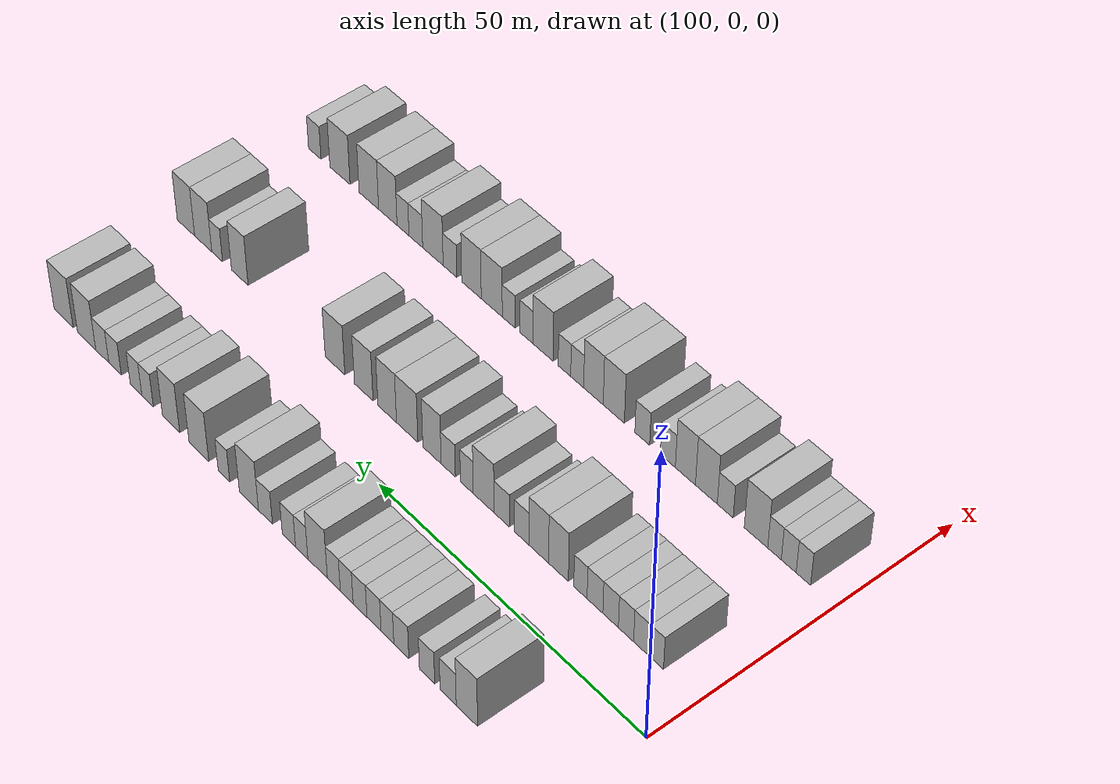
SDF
<sdf version="1.6">
 <world name="default">
  <model name="building_663">
   <static>1</static>
   <pose>91.0000 15.6715 0 0.000000 0.000000 0.000000</pose>
   <link name="link">
    <pose>0 0 4.50 0 0 0</pose>
    <collision name="collision"><geometry><box><size>10.0000 3.9258 9.0000</size></box></geometry></collision>
    <visual name="visual">
     <cast_shadows>0</cast_shadows>
     <geometry><box><size>10.0000 3.9258 9.0000</size></box></geometry>
     <material>
      <script>
       <uri>model://HANNAS_wall/materials/scripts</uri>
       <uri>model://HANNAS_wall/materials/textures</uri>
       <name>vrc/HANNAS_wall</name>
      </script>
     </material>
    </visual>
   </link>
  </model>
  <model name="building_664">
   <static>1</static>
   <pose>91.0000 19.1296 0 0.000000 0.000000 0.000000</pose>
   <link name="link">
    <pose>0 0 3.00 0 0 0</pose>
    <collision name="collision"><geometry><box><size>10.0000 2.9904 6.0000</size></box></geometry></collision>
    <visual name="visual">
     <cast_shadows>0</cast_shadows>
     <geometry><box><size>10.0000 2.9904 6.0000</size></box></geometry>
     <material>
      <script>
       <uri>model://HANNAS_wall/materials/scripts</uri>
       <uri>model://HANNAS_wall/materials/textures</uri>
       <name>vrc/HANNAS_wall</name>
      </script>
     </material>
    </visual>
   </link>
  </model>
  <model name="building_665">
   <static>1</static>
   <pose>91.0000 23.0635 0 0.000000 0.000000 0.000000</pose>
   <link name="link">
    <pose>0 0 3.00 0 0 0</pose>
    <collision name="collision"><geometry><box><size>10.0000 2.8774 6.0000</size></box></geometry></collision>
    <visual name="visual">
     <cast_shadows>0</cast_shadows>
     <geometry><box><size>10.0000 2.8774 6.0000</size></box></geometry>
     <material>
      <script>
       <uri>model://HANNAS_wall/materials/scripts</uri>
       <uri>model://HANNAS_wall/materials/textures</uri>
       <name>vrc/HANNAS_wall</name>
      </script>
     </material>
    </visual>
   </link>
  </model>
  <model name="building_666">
   <static>1</static>
   <pose>91.0000 27.9281 0 0.000000 0.000000 0.000000</pose>
   <link name="link">
    <pose>0 0 3.00 0 0 0</pose>
    <collision name="collision"><geometry><box><size>10.0000 2.8519 6.0000</size></box></geometry></collision>
    <visual name="visual">
     <cast_shadows>0</cast_shadows>
     <geometry><box><size>10.0000 2.8519 6.0000</size></box></geometry>
     <material>
      <script>
       <uri>model://HANNAS_wall/materials/scripts</uri>
       <uri>model://HANNAS_wall/materials/textures</uri>
       <name>vrc/HANNAS_wall</name>
      </script>
     </material>
    </visual>
   </link>
  </model>
  <model name="building_667">
   <static>1</static>
   <pose>91.0000 30.5806 0 0.000000 0.000000 0.000000</pose>
   <link name="link">
    <pose>0 0 3.00 0 0 0</pose>
    <collision name="collision"><geometry><box><size>10.0000 2.4531 6.0000</size></box></geometry></collision>
    <visual name="visual">
     <cast_shadows>0</cast_shadows>
     <geometry><box><size>10.0000 2.4531 6.0000</size></box></geometry>
     <material>
      <script>
       <uri>model://HANNAS_wall/materials/scripts</uri>
       <uri>model://HANNAS_wall/materials/textures</uri>
       <name>vrc/HANNAS_wall</name>
      </script>
     </material>
    </visual>
   </link>
  </model>
  <model name="building_668">
   <static>1</static>
   <pose>91.0000 33.1649 0 0.000000 0.000000 0.000000</pose>
   <link name="link">
    <pose>0 0 3.00 0 0 0</pose>
    <collision name="collision"><geometry><box><size>10.0000 2.7155 6.0000</size></box></geometry></collision>
    <visual name="visual">
     <cast_shadows>0</cast_shadows>
     <geometry><box><size>10.0000 2.7155 6.0000</size></box></geometry>
     <material>
      <script>
       <uri>model://HANNAS_wall/materials/scripts</uri>
       <uri>model://HANNAS_wall/materials/textures</uri>
       <name>vrc/HANNAS_wall</name>
      </script>
     </material>
    </visual>
   </link>
  </model>
  <model name="building_669">
   <static>1</static>
   <pose>91.0000 35.8710 0 0.000000 0.000000 0.000000</pose>
   <link name="link">
    <pose>0 0 3.00 0 0 0</pose>
    <collision name="collision"><geometry><box><size>10.0000 2.6967 6.0000</size></box></geometry></collision>
    <visual name="visual">
     <cast_shadows>0</cast_shadows>
     <geometry><box><size>10.0000 2.6967 6.0000</size></box></geometry>
     <material>
      <script>
       <uri>model://HANNAS_wall/materials/scripts</uri>
       <uri>model://HANNAS_wall/materials/textures</uri>
       <name>vrc/HANNAS_wall</name>
      </script>
     </material>
    </visual>
   </link>
  </model>
  <model name="building_670">
   <static>1</static>
   <pose>91.0000 38.4807 0 0.000000 0.000000 0.000000</pose>
   <link name="link">
    <pose>0 0 3.00 0 0 0</pose>
    <collision name="collision"><geometry><box><size>10.0000 2.5227 6.0000</size></box></geometry></collision>
    <visual name="visual">
     <cast_shadows>0</cast_shadows>
     <geometry><box><size>10.0000 2.5227 6.0000</size></box></geometry>
     <material>
      <script>
       <uri>model://HANNAS_wall/materials/scripts</uri>
       <uri>model://HANNAS_wall/materials/textures</uri>
       <name>vrc/HANNAS_wall</name>
      </script>
     </material>
    </visual>
   </link>
  </model>
  <model name="building_671">
   <static>1</static>
   <pose>91.0000 41.0210 0 0.000000 0.000000 0.000000</pose>
   <link name="link">
    <pose>0 0 3.00 0 0 0</pose>
    <collision name="collision"><geometry><box><size>10.0000 2.5579 6.0000</size></box></geometry></collision>
    <visual name="visual">
     <cast_shadows>0</cast_shadows>
     <geometry><box><size>10.0000 2.5579 6.0000</size></box></geometry>
     <material>
      <script>
       <uri>model://HANNAS_wall/materials/scripts</uri>
       <uri>model://HANNAS_wall/materials/textures</uri>
       <name>vrc/HANNAS_wall</name>
      </script>
     </material>
    </visual>
   </link>
  </model>
  <model name="building_672">
   <static>1</static>
   <pose>91.0000 44.2466 0 0.000000 0.000000 0.000000</pose>
   <link name="link">
    <pose>0 0 4.50 0 0 0</pose>
    <collision name="collision"><geometry><box><size>10.0000 3.8933 9.0000</size></box></geometry></collision>
    <visual name="visual">
     <cast_shadows>0</cast_shadows>
     <geometry><box><size>10.0000 3.8933 9.0000</size></box></geometry>
     <material>
      <script>
       <uri>model://HANNAS_wall/materials/scripts</uri>
       <uri>model://HANNAS_wall/materials/textures</uri>
       <name>vrc/HANNAS_wall</name>
      </script>
     </material>
    </visual>
   </link>
  </model>
  <model name="building_673">
   <static>1</static>
   <pose>91.0000 47.4314 0 0.000000 0.000000 0.000000</pose>
   <link name="link">
    <pose>0 0 3.00 0 0 0</pose>
    <collision name="collision"><geometry><box><size>10.0000 2.4763 6.0000</size></box></geometry></collision>
    <visual name="visual">
     <cast_shadows>0</cast_shadows>
     <geometry><box><size>10.0000 2.4763 6.0000</size></box></geometry>
     <material>
      <script>
       <uri>model://HANNAS_wall/materials/scripts</uri>
       <uri>model://HANNAS_wall/materials/textures</uri>
       <name>vrc/HANNAS_wall</name>
      </script>
     </material>
    </visual>
   </link>
  </model>
  <model name="building_674">
   <static>1</static>
   <pose>91.0000 50.0181 0 0.000000 0.000000 0.000000</pose>
   <link name="link">
    <pose>0 0 3.00 0 0 0</pose>
    <collision name="collision"><geometry><box><size>10.0000 2.6971 6.0000</size></box></geometry></collision>
    <visual name="visual">
     <cast_shadows>0</cast_shadows>
     <geometry><box><size>10.0000 2.6971 6.0000</size></box></geometry>
     <material>
      <script>
       <uri>model://HANNAS_wall/materials/scripts</uri>
       <uri>model://HANNAS_wall/materials/textures</uri>
       <name>vrc/HANNAS_wall</name>
      </script>
     </material>
    </visual>
   </link>
  </model>
  <model name="building_675">
   <static>1</static>
   <pose>91.0000 54.8024 0 0.000000 0.000000 0.000000</pose>
   <link name="link">
    <pose>0 0 3.00 0 0 0</pose>
    <collision name="collision"><geometry><box><size>10.0000 2.8715 6.0000</size></box></geometry></collision>
    <visual name="visual">
     <cast_shadows>0</cast_shadows>
     <geometry><box><size>10.0000 2.8715 6.0000</size></box></geometry>
     <material>
      <script>
       <uri>model://HANNAS_wall/materials/scripts</uri>
       <uri>model://HANNAS_wall/materials/textures</uri>
       <name>vrc/HANNAS_wall</name>
      </script>
     </material>
    </visual>
   </link>
  </model>
  <model name="building_676">
   <static>1</static>
   <pose>91.0000 58.2220 0 0.000000 0.000000 0.000000</pose>
   <link name="link">
    <pose>0 0 4.50 0 0 0</pose>
    <collision name="collision"><geometry><box><size>10.0000 3.9679 9.0000</size></box></geometry></collision>
    <visual name="visual">
     <cast_shadows>0</cast_shadows>
     <geometry><box><size>10.0000 3.9679 9.0000</size></box></geometry>
     <material>
      <script>
       <uri>model://HANNAS_wall/materials/scripts</uri>
       <uri>model://HANNAS_wall/materials/textures</uri>
       <name>vrc/HANNAS_wall</name>
      </script>
     </material>
    </visual>
   </link>
  </model>
  <model name="building_677">
   <static>1</static>
   <pose>91.0000 63.4225 0 0.000000 0.000000 0.000000</pose>
   <link name="link">
    <pose>0 0 3.00 0 0 0</pose>
    <collision name="collision"><geometry><box><size>10.0000 2.4330 6.0000</size></box></geometry></collision>
    <visual name="visual">
     <cast_shadows>0</cast_shadows>
     <geometry><box><size>10.0000 2.4330 6.0000</size></box></geometry>
     <material>
      <script>
       <uri>model://HANNAS_wall/materials/scripts</uri>
       <uri>model://HANNAS_wall/materials/textures</uri>
       <name>vrc/HANNAS_wall</name>
      </script>
     </material>
    </visual>
   </link>
  </model>
  <model name="building_678">
   <static>1</static>
   <pose>91.0000 68.7475 0 0.000000 0.000000 0.000000</pose>
   <link name="link">
    <pose>0 0 4.50 0 0 0</pose>
    <collision name="collision"><geometry><box><size>10.0000 4.2172 9.0000</size></box></geometry></collision>
    <visual name="visual">
     <cast_shadows>0</cast_shadows>
     <geometry><box><size>10.0000 4.2172 9.0000</size></box></geometry>
     <material>
      <script>
       <uri>model://HANNAS_wall/materials/scripts</uri>
       <uri>model://HANNAS_wall/materials/textures</uri>
       <name>vrc/HANNAS_wall</name>
      </script>
     </material>
    </visual>
   </link>
  </model>
  <model name="building_679">
   <static>1</static>
   <pose>91.0000 74.7246 0 0.000000 0.000000 0.000000</pose>
   <link name="link">
    <pose>0 0 4.50 0 0 0</pose>
    <collision name="collision"><geometry><box><size>10.0000 3.7370 9.0000</size></box></geometry></collision>
    <visual name="visual">
     <cast_shadows>0</cast_shadows>
     <geometry><box><size>10.0000 3.7370 9.0000</size></box></geometry>
     <material>
      <script>
       <uri>model://HANNAS_wall/materials/scripts</uri>
       <uri>model://HANNAS_wall/materials/textures</uri>
       <name>vrc/HANNAS_wall</name>
      </script>
     </material>
    </visual>
   </link>
  </model>
  <model name="building_680">
   <static>1</static>
   <pose>91.0000 79.8557 0 0.000000 0.000000 0.000000</pose>
   <link name="link">
    <pose>0 0 3.00 0 0 0</pose>
    <collision name="collision"><geometry><box><size>10.0000 2.5250 6.0000</size></box></geometry></collision>
    <visual name="visual">
     <cast_shadows>0</cast_shadows>
     <geometry><box><size>10.0000 2.5250 6.0000</size></box></geometry>
     <material>
      <script>
       <uri>model://HANNAS_wall/materials/scripts</uri>
       <uri>model://HANNAS_wall/materials/textures</uri>
       <name>vrc/HANNAS_wall</name>
      </script>
     </material>
    </visual>
   </link>
  </model>
  <model name="building_681">
   <static>1</static>
   <pose>91.0000 82.3991 0 0.000000 0.000000 0.000000</pose>
   <link name="link">
    <pose>0 0 3.00 0 0 0</pose>
    <collision name="collision"><geometry><box><size>10.0000 2.5619 6.0000</size></box></geometry></collision>
    <visual name="visual">
     <cast_shadows>0</cast_shadows>
     <geometry><box><size>10.0000 2.5619 6.0000</size></box></geometry>
     <material>
      <script>
       <uri>model://HANNAS_wall/materials/scripts</uri>
       <uri>model://HANNAS_wall/materials/textures</uri>
       <name>vrc/HANNAS_wall</name>
      </script>
     </material>
    </visual>
   </link>
  </model>
  <model name="building_682">
   <static>1</static>
   <pose>91.0000 87.0668 0 0.000000 0.000000 0.000000</pose>
   <link name="link">
    <pose>0 0 3.00 0 0 0</pose>
    <collision name="collision"><geometry><box><size>10.0000 2.7735 6.0000</size></box></geometry></collision>
    <visual name="visual">
     <cast_shadows>0</cast_shadows>
     <geometry><box><size>10.0000 2.7735 6.0000</size></box></geometry>
     <material>
      <script>
       <uri>model://HANNAS_wall/materials/scripts</uri>
       <uri>model://HANNAS_wall/materials/textures</uri>
       <name>vrc/HANNAS_wall</name>
      </script>
     </material>
    </visual>
   </link>
  </model>
  <model name="building_683">
   <static>1</static>
   <pose>91.0000 89.9437 0 0.000000 0.000000 0.000000</pose>
   <link name="link">
    <pose>0 0 3.00 0 0 0</pose>
    <collision name="collision"><geometry><box><size>10.0000 2.9803 6.0000</size></box></geometry></collision>
    <visual name="visual">
     <cast_shadows>0</cast_shadows>
     <geometry><box><size>10.0000 2.9803 6.0000</size></box></geometry>
     <material>
      <script>
       <uri>model://HANNAS_wall/materials/scripts</uri>
       <uri>model://HANNAS_wall/materials/textures</uri>
       <name>vrc/HANNAS_wall</name>
      </script>
     </material>
    </visual>
   </link>
  </model>
  <model name="building_684">
   <static>1</static>
   <pose>91.0000 93.5128 0 0.000000 0.000000 0.000000</pose>
   <link name="link">
    <pose>0 0 4.50 0 0 0</pose>
    <collision name="collision"><geometry><box><size>10.0000 4.1578 9.0000</size></box></geometry></collision>
    <visual name="visual">
     <cast_shadows>0</cast_shadows>
     <geometry><box><size>10.0000 4.1578 9.0000</size></box></geometry>
     <material>
      <script>
       <uri>model://HANNAS_wall/materials/scripts</uri>
       <uri>model://HANNAS_wall/materials/textures</uri>
       <name>vrc/HANNAS_wall</name>
      </script>
     </material>
    </visual>
   </link>
  </model>
  <model name="building_685">
   <static>1</static>
   <pose>91.0000 98.7895 0 0.000000 0.000000 0.000000</pose>
   <link name="link">
    <pose>0 0 4.50 0 0 0</pose>
    <collision name="collision"><geometry><box><size>10.0000 4.3956 9.0000</size></box></geometry></collision>
    <visual name="visual">
     <cast_shadows>0</cast_shadows>
     <geometry><box><size>10.0000 4.3956 9.0000</size></box></geometry>
     <material>
      <script>
       <uri>model://HANNAS_wall/materials/scripts</uri>
       <uri>model://HANNAS_wall/materials/textures</uri>
       <name>vrc/HANNAS_wall</name>
      </script>
     </material>
    </visual>
   </link>
  </model>
  <model name="building_854">
   <static>1</static>
   <pose>113.0000 7.3575 0 0.000000 0.000000 0.000000</pose>
   <link name="link">
    <pose>0 0 3.00 0 0 0</pose>
    <collision name="collision"><geometry><box><size>10.0000 2.4928 6.0000</size></box></geometry></collision>
    <visual name="visual">
     <cast_shadows>0</cast_shadows>
     <geometry><box><size>10.0000 2.4928 6.0000</size></box></geometry>
     <material>
      <script>
       <uri>model://HANNAS_wall/materials/scripts</uri>
       <uri>model://HANNAS_wall/materials/textures</uri>
       <name>vrc/HANNAS_wall</name>
      </script>
     </material>
    </visual>
   </link>
  </model>
  <model name="building_855">
   <static>1</static>
   <pose>113.0000 10.0164 0 0.000000 0.000000 0.000000</pose>
   <link name="link">
    <pose>0 0 3.00 0 0 0</pose>
    <collision name="collision"><geometry><box><size>10.0000 2.8249 6.0000</size></box></geometry></collision>
    <visual name="visual">
     <cast_shadows>0</cast_shadows>
     <geometry><box><size>10.0000 2.8249 6.0000</size></box></geometry>
     <material>
      <script>
       <uri>model://HANNAS_wall/materials/scripts</uri>
       <uri>model://HANNAS_wall/materials/textures</uri>
       <name>vrc/HANNAS_wall</name>
      </script>
     </material>
    </visual>
   </link>
  </model>
  <model name="building_856">
   <static>1</static>
   <pose>113.0000 12.8017 0 0.000000 0.000000 0.000000</pose>
   <link name="link">
    <pose>0 0 3.00 0 0 0</pose>
    <collision name="collision"><geometry><box><size>10.0000 2.7458 6.0000</size></box></geometry></collision>
    <visual name="visual">
     <cast_shadows>0</cast_shadows>
     <geometry><box><size>10.0000 2.7458 6.0000</size></box></geometry>
     <material>
      <script>
       <uri>model://HANNAS_wall/materials/scripts</uri>
       <uri>model://HANNAS_wall/materials/textures</uri>
       <name>vrc/HANNAS_wall</name>
      </script>
     </material>
    </visual>
   </link>
  </model>
  <model name="building_857">
   <static>1</static>
   <pose>113.0000 15.5845 0 0.000000 0.000000 0.000000</pose>
   <link name="link">
    <pose>0 0 3.00 0 0 0</pose>
    <collision name="collision"><geometry><box><size>10.0000 2.8197 6.0000</size></box></geometry></collision>
    <visual name="visual">
     <cast_shadows>0</cast_shadows>
     <geometry><box><size>10.0000 2.8197 6.0000</size></box></geometry>
     <material>
      <script>
       <uri>model://HANNAS_wall/materials/scripts</uri>
       <uri>model://HANNAS_wall/materials/textures</uri>
       <name>vrc/HANNAS_wall</name>
      </script>
     </material>
    </visual>
   </link>
  </model>
  <model name="building_858">
   <static>1</static>
   <pose>113.0000 18.4415 0 0.000000 0.000000 0.000000</pose>
   <link name="link">
    <pose>0 0 3.00 0 0 0</pose>
    <collision name="collision"><geometry><box><size>10.0000 2.8944 6.0000</size></box></geometry></collision>
    <visual name="visual">
     <cast_shadows>0</cast_shadows>
     <geometry><box><size>10.0000 2.8944 6.0000</size></box></geometry>
     <material>
      <script>
       <uri>model://HANNAS_wall/materials/scripts</uri>
       <uri>model://HANNAS_wall/materials/textures</uri>
       <name>vrc/HANNAS_wall</name>
      </script>
     </material>
    </visual>
   </link>
  </model>
  <model name="building_859">
   <static>1</static>
   <pose>113.0000 21.1152 0 0.000000 0.000000 0.000000</pose>
   <link name="link">
    <pose>0 0 3.00 0 0 0</pose>
    <collision name="collision"><geometry><box><size>10.0000 2.4530 6.0000</size></box></geometry></collision>
    <visual name="visual">
     <cast_shadows>0</cast_shadows>
     <geometry><box><size>10.0000 2.4530 6.0000</size></box></geometry>
     <material>
      <script>
       <uri>model://HANNAS_wall/materials/scripts</uri>
       <uri>model://HANNAS_wall/materials/textures</uri>
       <name>vrc/HANNAS_wall</name>
      </script>
     </material>
    </visual>
   </link>
  </model>
  <model name="building_860">
   <static>1</static>
   <pose>113.0000 25.1836 0 0.000000 0.000000 0.000000</pose>
   <link name="link">
    <pose>0 0 4.50 0 0 0</pose>
    <collision name="collision"><geometry><box><size>10.0000 3.6839 9.0000</size></box></geometry></collision>
    <visual name="visual">
     <cast_shadows>0</cast_shadows>
     <geometry><box><size>10.0000 3.6839 9.0000</size></box></geometry>
     <material>
      <script>
       <uri>model://HANNAS_wall/materials/scripts</uri>
       <uri>model://HANNAS_wall/materials/textures</uri>
       <name>vrc/HANNAS_wall</name>
      </script>
     </material>
    </visual>
   </link>
  </model>
  <model name="building_861">
   <static>1</static>
   <pose>113.0000 28.8851 0 0.000000 0.000000 0.000000</pose>
   <link name="link">
    <pose>0 0 4.50 0 0 0</pose>
    <collision name="collision"><geometry><box><size>10.0000 3.7191 9.0000</size></box></geometry></collision>
    <visual name="visual">
     <cast_shadows>0</cast_shadows>
     <geometry><box><size>10.0000 3.7191 9.0000</size></box></geometry>
     <material>
      <script>
       <uri>model://HANNAS_wall/materials/scripts</uri>
       <uri>model://HANNAS_wall/materials/textures</uri>
       <name>vrc/HANNAS_wall</name>
      </script>
     </material>
    </visual>
   </link>
  </model>
  <model name="building_862">
   <static>1</static>
   <pose>113.0000 32.1006 0 0.000000 0.000000 0.000000</pose>
   <link name="link">
    <pose>0 0 3.00 0 0 0</pose>
    <collision name="collision"><geometry><box><size>10.0000 2.7120 6.0000</size></box></geometry></collision>
    <visual name="visual">
     <cast_shadows>0</cast_shadows>
     <geometry><box><size>10.0000 2.7120 6.0000</size></box></geometry>
     <material>
      <script>
       <uri>model://HANNAS_wall/materials/scripts</uri>
       <uri>model://HANNAS_wall/materials/textures</uri>
       <name>vrc/HANNAS_wall</name>
      </script>
     </material>
    </visual>
   </link>
  </model>
  <model name="building_863">
   <static>1</static>
   <pose>113.0000 35.9435 0 0.000000 0.000000 0.000000</pose>
   <link name="link">
    <pose>0 0 3.00 0 0 0</pose>
    <collision name="collision"><geometry><box><size>10.0000 2.9737 6.0000</size></box></geometry></collision>
    <visual name="visual">
     <cast_shadows>0</cast_shadows>
     <geometry><box><size>10.0000 2.9737 6.0000</size></box></geometry>
     <material>
      <script>
       <uri>model://HANNAS_wall/materials/scripts</uri>
       <uri>model://HANNAS_wall/materials/textures</uri>
       <name>vrc/HANNAS_wall</name>
      </script>
     </material>
    </visual>
   </link>
  </model>
  <model name="building_864">
   <static>1</static>
   <pose>113.0000 39.4482 0 0.000000 0.000000 0.000000</pose>
   <link name="link">
    <pose>0 0 4.50 0 0 0</pose>
    <collision name="collision"><geometry><box><size>10.0000 4.0356 9.0000</size></box></geometry></collision>
    <visual name="visual">
     <cast_shadows>0</cast_shadows>
     <geometry><box><size>10.0000 4.0356 9.0000</size></box></geometry>
     <material>
      <script>
       <uri>model://HANNAS_wall/materials/scripts</uri>
       <uri>model://HANNAS_wall/materials/textures</uri>
       <name>vrc/HANNAS_wall</name>
      </script>
     </material>
    </visual>
   </link>
  </model>
  <model name="building_865">
   <static>1</static>
   <pose>113.0000 42.7165 0 0.000000 0.000000 0.000000</pose>
   <link name="link">
    <pose>0 0 3.00 0 0 0</pose>
    <collision name="collision"><geometry><box><size>10.0000 2.5010 6.0000</size></box></geometry></collision>
    <visual name="visual">
     <cast_shadows>0</cast_shadows>
     <geometry><box><size>10.0000 2.5010 6.0000</size></box></geometry>
     <material>
      <script>
       <uri>model://HANNAS_wall/materials/scripts</uri>
       <uri>model://HANNAS_wall/materials/textures</uri>
       <name>vrc/HANNAS_wall</name>
      </script>
     </material>
    </visual>
   </link>
  </model>
  <model name="building_866">
   <static>1</static>
   <pose>113.0000 46.3689 0 0.000000 0.000000 0.000000</pose>
   <link name="link">
    <pose>0 0 3.00 0 0 0</pose>
    <collision name="collision"><geometry><box><size>10.0000 2.8038 6.0000</size></box></geometry></collision>
    <visual name="visual">
     <cast_shadows>0</cast_shadows>
     <geometry><box><size>10.0000 2.8038 6.0000</size></box></geometry>
     <material>
      <script>
       <uri>model://HANNAS_wall/materials/scripts</uri>
       <uri>model://HANNAS_wall/materials/textures</uri>
       <name>vrc/HANNAS_wall</name>
      </script>
     </material>
    </visual>
   </link>
  </model>
  <model name="building_867">
   <static>1</static>
   <pose>113.0000 49.6014 0 0.000000 0.000000 0.000000</pose>
   <link name="link">
    <pose>0 0 4.50 0 0 0</pose>
    <collision name="collision"><geometry><box><size>10.0000 3.6613 9.0000</size></box></geometry></collision>
    <visual name="visual">
     <cast_shadows>0</cast_shadows>
     <geometry><box><size>10.0000 3.6613 9.0000</size></box></geometry>
     <material>
      <script>
       <uri>model://HANNAS_wall/materials/scripts</uri>
       <uri>model://HANNAS_wall/materials/textures</uri>
       <name>vrc/HANNAS_wall</name>
      </script>
     </material>
    </visual>
   </link>
  </model>
  <model name="building_868">
   <static>1</static>
   <pose>113.0000 54.5951 0 0.000000 0.000000 0.000000</pose>
   <link name="link">
    <pose>0 0 4.50 0 0 0</pose>
    <collision name="collision"><geometry><box><size>10.0000 4.3262 9.0000</size></box></geometry></collision>
    <visual name="visual">
     <cast_shadows>0</cast_shadows>
     <geometry><box><size>10.0000 4.3262 9.0000</size></box></geometry>
     <material>
      <script>
       <uri>model://HANNAS_wall/materials/scripts</uri>
       <uri>model://HANNAS_wall/materials/textures</uri>
       <name>vrc/HANNAS_wall</name>
      </script>
     </material>
    </visual>
   </link>
  </model>
  <model name="building_869">
   <static>1</static>
   <pose>113.0000 58.6582 0 0.000000 0.000000 0.000000</pose>
   <link name="link">
    <pose>0 0 4.50 0 0 0</pose>
    <collision name="collision"><geometry><box><size>10.0000 3.7999 9.0000</size></box></geometry></collision>
    <visual name="visual">
     <cast_shadows>0</cast_shadows>
     <geometry><box><size>10.0000 3.7999 9.0000</size></box></geometry>
     <material>
      <script>
       <uri>model://HANNAS_wall/materials/scripts</uri>
       <uri>model://HANNAS_wall/materials/textures</uri>
       <name>vrc/HANNAS_wall</name>
      </script>
     </material>
    </visual>
   </link>
  </model>
  <model name="building_870">
   <static>1</static>
   <pose>113.0000 63.4867 0 0.000000 0.000000 0.000000</pose>
   <link name="link">
    <pose>0 0 4.50 0 0 0</pose>
    <collision name="collision"><geometry><box><size>10.0000 3.8573 9.0000</size></box></geometry></collision>
    <visual name="visual">
     <cast_shadows>0</cast_shadows>
     <geometry><box><size>10.0000 3.8573 9.0000</size></box></geometry>
     <material>
      <script>
       <uri>model://HANNAS_wall/materials/scripts</uri>
       <uri>model://HANNAS_wall/materials/textures</uri>
       <name>vrc/HANNAS_wall</name>
      </script>
     </material>
    </visual>
   </link>
  </model>
  <model name="building_871">
   <static>1</static>
   <pose>113.0000 69.4856 0 0.000000 0.000000 0.000000</pose>
   <link name="link">
    <pose>0 0 4.50 0 0 0</pose>
    <collision name="collision"><geometry><box><size>10.0000 4.1404 9.0000</size></box></geometry></collision>
    <visual name="visual">
     <cast_shadows>0</cast_shadows>
     <geometry><box><size>10.0000 4.1404 9.0000</size></box></geometry>
     <material>
      <script>
       <uri>model://HANNAS_wall/materials/scripts</uri>
       <uri>model://HANNAS_wall/materials/textures</uri>
       <name>vrc/HANNAS_wall</name>
      </script>
     </material>
    </visual>
   </link>
  </model>
  <model name="building_872">
   <static>1</static>
   <pose>113.0000 90.1041 0 0.000000 0.000000 0.000000</pose>
   <link name="link">
    <pose>0 0 4.50 0 0 0</pose>
    <collision name="collision"><geometry><box><size>10.0000 3.6989 9.0000</size></box></geometry></collision>
    <visual name="visual">
     <cast_shadows>0</cast_shadows>
     <geometry><box><size>10.0000 3.6989 9.0000</size></box></geometry>
     <material>
      <script>
       <uri>model://HANNAS_wall/materials/scripts</uri>
       <uri>model://HANNAS_wall/materials/textures</uri>
       <name>vrc/HANNAS_wall</name>
      </script>
     </material>
    </visual>
   </link>
  </model>
  <model name="building_873">
   <static>1</static>
   <pose>113.0000 95.1692 0 0.000000 0.000000 0.000000</pose>
   <link name="link">
    <pose>0 0 3.00 0 0 0</pose>
    <collision name="collision"><geometry><box><size>10.0000 2.4313 6.0000</size></box></geometry></collision>
    <visual name="visual">
     <cast_shadows>0</cast_shadows>
     <geometry><box><size>10.0000 2.4313 6.0000</size></box></geometry>
     <material>
      <script>
       <uri>model://HANNAS_wall/materials/scripts</uri>
       <uri>model://HANNAS_wall/materials/textures</uri>
       <name>vrc/HANNAS_wall</name>
      </script>
     </material>
    </visual>
   </link>
  </model>
  <model name="building_874">
   <static>1</static>
   <pose>113.0000 98.3243 0 0.000000 0.000000 0.000000</pose>
   <link name="link">
    <pose>0 0 4.50 0 0 0</pose>
    <collision name="collision"><geometry><box><size>10.0000 3.8789 9.0000</size></box></geometry></collision>
    <visual name="visual">
     <cast_shadows>0</cast_shadows>
     <geometry><box><size>10.0000 3.8789 9.0000</size></box></geometry>
     <material>
      <script>
       <uri>model://HANNAS_wall/materials/scripts</uri>
       <uri>model://HANNAS_wall/materials/textures</uri>
       <name>vrc/HANNAS_wall</name>
      </script>
     </material>
    </visual>
   </link>
  </model>
  <model name="building_875">
   <static>1</static>
   <pose>113.0000 102.2538 0 0.000000 0.000000 0.000000</pose>
   <link name="link">
    <pose>0 0 4.50 0 0 0</pose>
    <collision name="collision"><geometry><box><size>10.0000 3.9801 9.0000</size></box></geometry></collision>
    <visual name="visual">
     <cast_shadows>0</cast_shadows>
     <geometry><box><size>10.0000 3.9801 9.0000</size></box></geometry>
     <material>
      <script>
       <uri>model://HANNAS_wall/materials/scripts</uri>
       <uri>model://HANNAS_wall/materials/textures</uri>
       <name>vrc/HANNAS_wall</name>
      </script>
     </material>
    </visual>
   </link>
  </model>
  <model name="building_1041">
   <static>1</static>
   <pose>135.0000 5.4971 0 0.000000 0.000000 0.000000</pose>
   <link name="link">
    <pose>0 0 3.00 0 0 0</pose>
    <collision name="collision"><geometry><box><size>10.0000 2.5419 6.0000</size></box></geometry></collision>
    <visual name="visual">
     <cast_shadows>0</cast_shadows>
     <geometry><box><size>10.0000 2.5419 6.0000</size></box></geometry>
     <material>
      <script>
       <uri>model://HANNAS_wall/materials/scripts</uri>
       <uri>model://HANNAS_wall/materials/textures</uri>
       <name>vrc/HANNAS_wall</name>
      </script>
     </material>
    </visual>
   </link>
  </model>
  <model name="building_1042">
   <static>1</static>
   <pose>135.0000 8.0776 0 0.000000 0.000000 0.000000</pose>
   <link name="link">
    <pose>0 0 3.00 0 0 0</pose>
    <collision name="collision"><geometry><box><size>10.0000 2.6190 6.0000</size></box></geometry></collision>
    <visual name="visual">
     <cast_shadows>0</cast_shadows>
     <geometry><box><size>10.0000 2.6190 6.0000</size></box></geometry>
     <material>
      <script>
       <uri>model://HANNAS_wall/materials/scripts</uri>
       <uri>model://HANNAS_wall/materials/textures</uri>
       <name>vrc/HANNAS_wall</name>
      </script>
     </material>
    </visual>
   </link>
  </model>
  <model name="building_1043">
   <static>1</static>
   <pose>135.0000 10.5928 0 0.000000 0.000000 0.000000</pose>
   <link name="link">
    <pose>0 0 3.00 0 0 0</pose>
    <collision name="collision"><geometry><box><size>10.0000 2.4114 6.0000</size></box></geometry></collision>
    <visual name="visual">
     <cast_shadows>0</cast_shadows>
     <geometry><box><size>10.0000 2.4114 6.0000</size></box></geometry>
     <material>
      <script>
       <uri>model://HANNAS_wall/materials/scripts</uri>
       <uri>model://HANNAS_wall/materials/textures</uri>
       <name>vrc/HANNAS_wall</name>
      </script>
     </material>
    </visual>
   </link>
  </model>
  <model name="building_1044">
   <static>1</static>
   <pose>135.0000 13.9011 0 0.000000 0.000000 0.000000</pose>
   <link name="link">
    <pose>0 0 4.50 0 0 0</pose>
    <collision name="collision"><geometry><box><size>10.0000 4.2052 9.0000</size></box></geometry></collision>
    <visual name="visual">
     <cast_shadows>0</cast_shadows>
     <geometry><box><size>10.0000 4.2052 9.0000</size></box></geometry>
     <material>
      <script>
       <uri>model://HANNAS_wall/materials/scripts</uri>
       <uri>model://HANNAS_wall/materials/textures</uri>
       <name>vrc/HANNAS_wall</name>
      </script>
     </material>
    </visual>
   </link>
  </model>
  <model name="building_1045">
   <static>1</static>
   <pose>135.0000 19.4470 0 0.000000 0.000000 0.000000</pose>
   <link name="link">
    <pose>0 0 3.00 0 0 0</pose>
    <collision name="collision"><geometry><box><size>10.0000 2.8867 6.0000</size></box></geometry></collision>
    <visual name="visual">
     <cast_shadows>0</cast_shadows>
     <geometry><box><size>10.0000 2.8867 6.0000</size></box></geometry>
     <material>
      <script>
       <uri>model://HANNAS_wall/materials/scripts</uri>
       <uri>model://HANNAS_wall/materials/textures</uri>
       <name>vrc/HANNAS_wall</name>
      </script>
     </material>
    </visual>
   </link>
  </model>
  <model name="building_1046">
   <static>1</static>
   <pose>135.0000 22.9004 0 0.000000 0.000000 0.000000</pose>
   <link name="link">
    <pose>0 0 4.50 0 0 0</pose>
    <collision name="collision"><geometry><box><size>10.0000 4.0202 9.0000</size></box></geometry></collision>
    <visual name="visual">
     <cast_shadows>0</cast_shadows>
     <geometry><box><size>10.0000 4.0202 9.0000</size></box></geometry>
     <material>
      <script>
       <uri>model://HANNAS_wall/materials/scripts</uri>
       <uri>model://HANNAS_wall/materials/textures</uri>
       <name>vrc/HANNAS_wall</name>
      </script>
     </material>
    </visual>
   </link>
  </model>
  <model name="building_1047">
   <static>1</static>
   <pose>135.0000 26.7784 0 0.000000 0.000000 0.000000</pose>
   <link name="link">
    <pose>0 0 4.50 0 0 0</pose>
    <collision name="collision"><geometry><box><size>10.0000 3.7357 9.0000</size></box></geometry></collision>
    <visual name="visual">
     <cast_shadows>0</cast_shadows>
     <geometry><box><size>10.0000 3.7357 9.0000</size></box></geometry>
     <material>
      <script>
       <uri>model://HANNAS_wall/materials/scripts</uri>
       <uri>model://HANNAS_wall/materials/textures</uri>
       <name>vrc/HANNAS_wall</name>
      </script>
     </material>
    </visual>
   </link>
  </model>
  <model name="building_1048">
   <static>1</static>
   <pose>135.0000 30.0590 0 0.000000 0.000000 0.000000</pose>
   <link name="link">
    <pose>0 0 3.00 0 0 0</pose>
    <collision name="collision"><geometry><box><size>10.0000 2.8255 6.0000</size></box></geometry></collision>
    <visual name="visual">
     <cast_shadows>0</cast_shadows>
     <geometry><box><size>10.0000 2.8255 6.0000</size></box></geometry>
     <material>
      <script>
       <uri>model://HANNAS_wall/materials/scripts</uri>
       <uri>model://HANNAS_wall/materials/textures</uri>
       <name>vrc/HANNAS_wall</name>
      </script>
     </material>
    </visual>
   </link>
  </model>
  <model name="building_1049">
   <static>1</static>
   <pose>135.0000 34.8784 0 0.000000 0.000000 0.000000</pose>
   <link name="link">
    <pose>0 0 3.00 0 0 0</pose>
    <collision name="collision"><geometry><box><size>10.0000 2.8131 6.0000</size></box></geometry></collision>
    <visual name="visual">
     <cast_shadows>0</cast_shadows>
     <geometry><box><size>10.0000 2.8131 6.0000</size></box></geometry>
     <material>
      <script>
       <uri>model://HANNAS_wall/materials/scripts</uri>
       <uri>model://HANNAS_wall/materials/textures</uri>
       <name>vrc/HANNAS_wall</name>
      </script>
     </material>
    </visual>
   </link>
  </model>
  <model name="building_1050">
   <static>1</static>
   <pose>135.0000 40.3228 0 0.000000 0.000000 0.000000</pose>
   <link name="link">
    <pose>0 0 4.50 0 0 0</pose>
    <collision name="collision"><geometry><box><size>10.0000 4.0758 9.0000</size></box></geometry></collision>
    <visual name="visual">
     <cast_shadows>0</cast_shadows>
     <geometry><box><size>10.0000 4.0758 9.0000</size></box></geometry>
     <material>
      <script>
       <uri>model://HANNAS_wall/materials/scripts</uri>
       <uri>model://HANNAS_wall/materials/textures</uri>
       <name>vrc/HANNAS_wall</name>
      </script>
     </material>
    </visual>
   </link>
  </model>
  <model name="building_1051">
   <static>1</static>
   <pose>135.0000 44.2630 0 0.000000 0.000000 0.000000</pose>
   <link name="link">
    <pose>0 0 4.50 0 0 0</pose>
    <collision name="collision"><geometry><box><size>10.0000 3.8047 9.0000</size></box></geometry></collision>
    <visual name="visual">
     <cast_shadows>0</cast_shadows>
     <geometry><box><size>10.0000 3.8047 9.0000</size></box></geometry>
     <material>
      <script>
       <uri>model://HANNAS_wall/materials/scripts</uri>
       <uri>model://HANNAS_wall/materials/textures</uri>
       <name>vrc/HANNAS_wall</name>
      </script>
     </material>
    </visual>
   </link>
  </model>
  <model name="building_1052">
   <static>1</static>
   <pose>135.0000 47.4377 0 0.000000 0.000000 0.000000</pose>
   <link name="link">
    <pose>0 0 3.00 0 0 0</pose>
    <collision name="collision"><geometry><box><size>10.0000 2.5448 6.0000</size></box></geometry></collision>
    <visual name="visual">
     <cast_shadows>0</cast_shadows>
     <geometry><box><size>10.0000 2.5448 6.0000</size></box></geometry>
     <material>
      <script>
       <uri>model://HANNAS_wall/materials/scripts</uri>
       <uri>model://HANNAS_wall/materials/textures</uri>
       <name>vrc/HANNAS_wall</name>
      </script>
     </material>
    </visual>
   </link>
  </model>
  <model name="building_1053">
   <static>1</static>
   <pose>135.0000 49.9440 0 0.000000 0.000000 0.000000</pose>
   <link name="link">
    <pose>0 0 3.00 0 0 0</pose>
    <collision name="collision"><geometry><box><size>10.0000 2.4678 6.0000</size></box></geometry></collision>
    <visual name="visual">
     <cast_shadows>0</cast_shadows>
     <geometry><box><size>10.0000 2.4678 6.0000</size></box></geometry>
     <material>
      <script>
       <uri>model://HANNAS_wall/materials/scripts</uri>
       <uri>model://HANNAS_wall/materials/textures</uri>
       <name>vrc/HANNAS_wall</name>
      </script>
     </material>
    </visual>
   </link>
  </model>
  <model name="building_1054">
   <static>1</static>
   <pose>135.0000 54.2135 0 0.000000 0.000000 0.000000</pose>
   <link name="link">
    <pose>0 0 4.50 0 0 0</pose>
    <collision name="collision"><geometry><box><size>10.0000 4.0712 9.0000</size></box></geometry></collision>
    <visual name="visual">
     <cast_shadows>0</cast_shadows>
     <geometry><box><size>10.0000 4.0712 9.0000</size></box></geometry>
     <material>
      <script>
       <uri>model://HANNAS_wall/materials/scripts</uri>
       <uri>model://HANNAS_wall/materials/textures</uri>
       <name>vrc/HANNAS_wall</name>
      </script>
     </material>
    </visual>
   </link>
  </model>
  <model name="building_1055">
   <static>1</static>
   <pose>135.0000 57.5366 0 0.000000 0.000000 0.000000</pose>
   <link name="link">
    <pose>0 0 3.00 0 0 0</pose>
    <collision name="collision"><geometry><box><size>10.0000 2.5749 6.0000</size></box></geometry></collision>
    <visual name="visual">
     <cast_shadows>0</cast_shadows>
     <geometry><box><size>10.0000 2.5749 6.0000</size></box></geometry>
     <material>
      <script>
       <uri>model://HANNAS_wall/materials/scripts</uri>
       <uri>model://HANNAS_wall/materials/textures</uri>
       <name>vrc/HANNAS_wall</name>
      </script>
     </material>
    </visual>
   </link>
  </model>
  <model name="building_1056">
   <static>1</static>
   <pose>135.0000 61.1313 0 0.000000 0.000000 0.000000</pose>
   <link name="link">
    <pose>0 0 3.00 0 0 0</pose>
    <collision name="collision"><geometry><box><size>10.0000 2.6145 6.0000</size></box></geometry></collision>
    <visual name="visual">
     <cast_shadows>0</cast_shadows>
     <geometry><box><size>10.0000 2.6145 6.0000</size></box></geometry>
     <material>
      <script>
       <uri>model://HANNAS_wall/materials/scripts</uri>
       <uri>model://HANNAS_wall/materials/textures</uri>
       <name>vrc/HANNAS_wall</name>
      </script>
     </material>
    </visual>
   </link>
  </model>
  <model name="building_1057">
   <static>1</static>
   <pose>135.0000 64.6007 0 0.000000 0.000000 0.000000</pose>
   <link name="link">
    <pose>0 0 4.50 0 0 0</pose>
    <collision name="collision"><geometry><box><size>10.0000 4.3244 9.0000</size></box></geometry></collision>
    <visual name="visual">
     <cast_shadows>0</cast_shadows>
     <geometry><box><size>10.0000 4.3244 9.0000</size></box></geometry>
     <material>
      <script>
       <uri>model://HANNAS_wall/materials/scripts</uri>
       <uri>model://HANNAS_wall/materials/textures</uri>
       <name>vrc/HANNAS_wall</name>
      </script>
     </material>
    </visual>
   </link>
  </model>
  <model name="building_1058">
   <static>1</static>
   <pose>135.0000 68.7916 0 0.000000 0.000000 0.000000</pose>
   <link name="link">
    <pose>0 0 4.50 0 0 0</pose>
    <collision name="collision"><geometry><box><size>10.0000 4.0573 9.0000</size></box></geometry></collision>
    <visual name="visual">
     <cast_shadows>0</cast_shadows>
     <geometry><box><size>10.0000 4.0573 9.0000</size></box></geometry>
     <material>
      <script>
       <uri>model://HANNAS_wall/materials/scripts</uri>
       <uri>model://HANNAS_wall/materials/textures</uri>
       <name>vrc/HANNAS_wall</name>
      </script>
     </material>
    </visual>
   </link>
  </model>
  <model name="building_1059">
   <static>1</static>
   <pose>135.0000 73.2634 0 0.000000 0.000000 0.000000</pose>
   <link name="link">
    <pose>0 0 3.00 0 0 0</pose>
    <collision name="collision"><geometry><box><size>10.0000 2.8863 6.0000</size></box></geometry></collision>
    <visual name="visual">
     <cast_shadows>0</cast_shadows>
     <geometry><box><size>10.0000 2.8863 6.0000</size></box></geometry>
     <material>
      <script>
       <uri>model://HANNAS_wall/materials/scripts</uri>
       <uri>model://HANNAS_wall/materials/textures</uri>
       <name>vrc/HANNAS_wall</name>
      </script>
     </material>
    </visual>
   </link>
  </model>
  <model name="building_1060">
   <static>1</static>
   <pose>135.0000 76.8763 0 0.000000 0.000000 0.000000</pose>
   <link name="link">
    <pose>0 0 4.50 0 0 0</pose>
    <collision name="collision"><geometry><box><size>10.0000 4.3395 9.0000</size></box></geometry></collision>
    <visual name="visual">
     <cast_shadows>0</cast_shadows>
     <geometry><box><size>10.0000 4.3395 9.0000</size></box></geometry>
     <material>
      <script>
       <uri>model://HANNAS_wall/materials/scripts</uri>
       <uri>model://HANNAS_wall/materials/textures</uri>
       <name>vrc/HANNAS_wall</name>
      </script>
     </material>
    </visual>
   </link>
  </model>
  <model name="building_1061">
   <static>1</static>
   <pose>135.0000 80.5140 0 0.000000 0.000000 0.000000</pose>
   <link name="link">
    <pose>0 0 3.00 0 0 0</pose>
    <collision name="collision"><geometry><box><size>10.0000 2.9360 6.0000</size></box></geometry></collision>
    <visual name="visual">
     <cast_shadows>0</cast_shadows>
     <geometry><box><size>10.0000 2.9360 6.0000</size></box></geometry>
     <material>
      <script>
       <uri>model://HANNAS_wall/materials/scripts</uri>
       <uri>model://HANNAS_wall/materials/textures</uri>
       <name>vrc/HANNAS_wall</name>
      </script>
     </material>
    </visual>
   </link>
  </model>
  <model name="building_1062">
   <static>1</static>
   <pose>135.0000 83.2662 0 0.000000 0.000000 0.000000</pose>
   <link name="link">
    <pose>0 0 3.00 0 0 0</pose>
    <collision name="collision"><geometry><box><size>10.0000 2.5684 6.0000</size></box></geometry></collision>
    <visual name="visual">
     <cast_shadows>0</cast_shadows>
     <geometry><box><size>10.0000 2.5684 6.0000</size></box></geometry>
     <material>
      <script>
       <uri>model://HANNAS_wall/materials/scripts</uri>
       <uri>model://HANNAS_wall/materials/textures</uri>
       <name>vrc/HANNAS_wall</name>
      </script>
     </material>
    </visual>
   </link>
  </model>
  <model name="building_1063">
   <static>1</static>
   <pose>135.0000 86.5531 0 0.000000 0.000000 0.000000</pose>
   <link name="link">
    <pose>0 0 4.50 0 0 0</pose>
    <collision name="collision"><geometry><box><size>10.0000 4.0054 9.0000</size></box></geometry></collision>
    <visual name="visual">
     <cast_shadows>0</cast_shadows>
     <geometry><box><size>10.0000 4.0054 9.0000</size></box></geometry>
     <material>
      <script>
       <uri>model://HANNAS_wall/materials/scripts</uri>
       <uri>model://HANNAS_wall/materials/textures</uri>
       <name>vrc/HANNAS_wall</name>
      </script>
     </material>
    </visual>
   </link>
  </model>
  <model name="building_1064">
   <static>1</static>
   <pose>135.0000 90.7012 0 0.000000 0.000000 0.000000</pose>
   <link name="link">
    <pose>0 0 4.50 0 0 0</pose>
    <collision name="collision"><geometry><box><size>10.0000 4.2909 9.0000</size></box></geometry></collision>
    <visual name="visual">
     <cast_shadows>0</cast_shadows>
     <geometry><box><size>10.0000 4.2909 9.0000</size></box></geometry>
     <material>
      <script>
       <uri>model://HANNAS_wall/materials/scripts</uri>
       <uri>model://HANNAS_wall/materials/textures</uri>
       <name>vrc/HANNAS_wall</name>
      </script>
     </material>
    </visual>
   </link>
  </model>
  <model name="building_1065">
   <static>1</static>
   <pose>135.0000 97.0927 0 0.000000 0.000000 0.000000</pose>
   <link name="link">
    <pose>0 0 4.50 0 0 0</pose>
    <collision name="collision"><geometry><box><size>10.0000 4.4922 9.0000</size></box></geometry></collision>
    <visual name="visual">
     <cast_shadows>0</cast_shadows>
     <geometry><box><size>10.0000 4.4922 9.0000</size></box></geometry>
     <material>
      <script>
       <uri>model://HANNAS_wall/materials/scripts</uri>
       <uri>model://HANNAS_wall/materials/textures</uri>
       <name>vrc/HANNAS_wall</name>
      </script>
     </material>
    </visual>
   </link>
  </model>
  <model name="building_1066">
   <static>1</static>
   <pose>135.0000 102.7455 0 0.000000 0.000000 0.000000</pose>
   <link name="link">
    <pose>0 0 3.00 0 0 0</pose>
    <collision name="collision"><geometry><box><size>10.0000 2.8132 6.0000</size></box></geometry></collision>
    <visual name="visual">
     <cast_shadows>0</cast_shadows>
     <geometry><box><size>10.0000 2.8132 6.0000</size></box></geometry>
     <material>
      <script>
       <uri>model://HANNAS_wall/materials/scripts</uri>
       <uri>model://HANNAS_wall/materials/textures</uri>
       <name>vrc/HANNAS_wall</name>
      </script>
     </material>
    </visual>
   </link>
  </model>
 </world>
</sdf>
